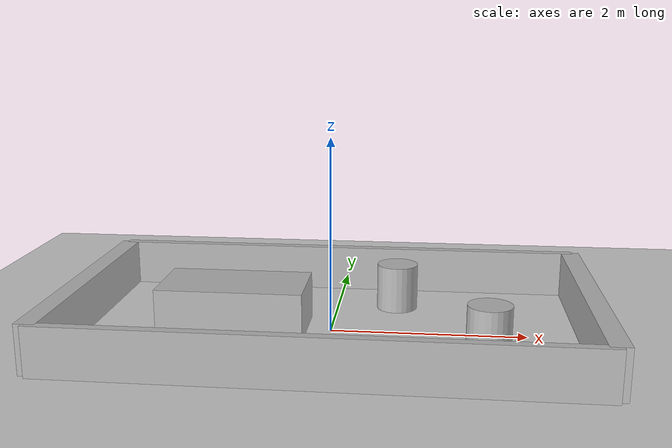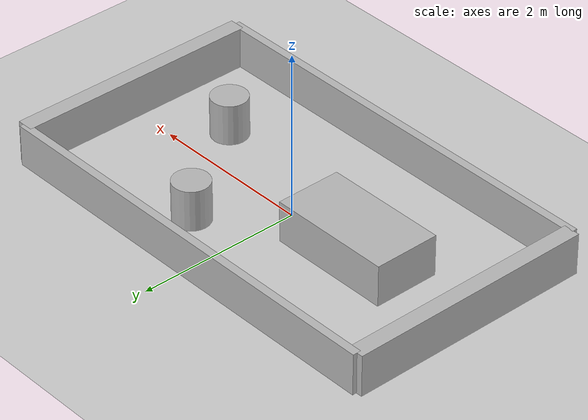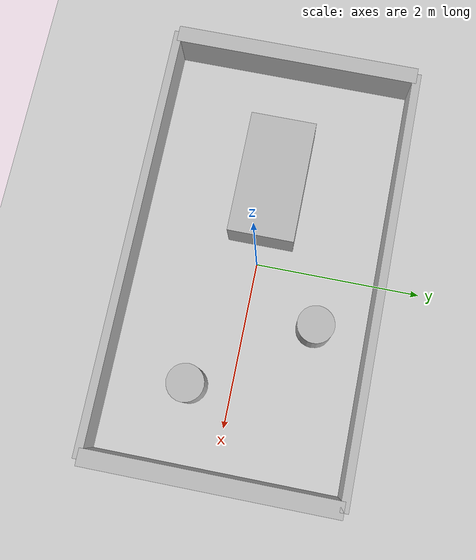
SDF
<?xml version="1.0" ?>
<sdf version="1.4">
  <world name="default">
    <physics type="ode">
      <gravity>0 0 -9.81</gravity>
      <ode>
        <solver>
          <type>quick</type>
          <iters>20</iters>
          <sor>1.0</sor>
        </solver>
        <constraints>
          <cfm>0.0</cfm>
          <erp>0.2</erp>
          <contact_max_correcting_vel>100.0</contact_max_correcting_vel>
          <contact_surface_layer>0.0</contact_surface_layer>
        </constraints>
      </ode>
      <real_time_update_rate>1000</real_time_update_rate>
      <max_step_size>0.001</max_step_size>
    </physics>

    <!-- A global light source -->
    <include>
      <uri>model://sun</uri>
    </include>

    <!-- A ground plane -->
    <include>
      <uri>model://ground_plane</uri>
    </include>

    <model name="wall_1_model">
      <pose>-0 -1.5 0.25 0 0 0</pose>
      <static>true</static>
      <link name="wall_1_body">
        <inertial>
          <mass>1.0</mass>
          <inertia>
            <ixx>1.0</ixx>
            <ixy>0.0</ixy>
            <ixz>0.0</ixz>
            <iyy>1.0</iyy>
            <iyz>0.0</iyz>
            <izz>1.0</izz>
          </inertia>
        </inertial>
        <collision name="collision">
          <geometry>
            <box>
              <size>5.25 0.10 0.5</size>
            </box>
          </geometry>
        </collision>
        <visual name="visual">
          <geometry>
            <box>
              <size>5.25 0.10 0.5</size>
            </box>
          </geometry>
        </visual>
      </link>
    </model>
    <model name="wall_2_model">
      <pose>0 1.5 0.25 0 0 0</pose>
      <static>true</static>
      <link name="wall_2_body">
        <inertial>
          <mass>1.0</mass>
          <inertia>
            <ixx>1.0</ixx>
            <ixy>0.0</ixy>
            <ixz>0.0</ixz>
            <iyy>1.0</iyy>
            <iyz>0.0</iyz>
            <izz>1.0</izz>
          </inertia>
        </inertial>
        <collision name="collision">
          <geometry>
            <box>
              <size>5.25 0.1 0.5</size>
            </box>
          </geometry>
        </collision>
        <visual name="visual">
          <geometry>
            <box>
              <size>5.25 0.1 0.5</size>
            </box>
          </geometry>
        </visual>
      </link>
    </model>
    <model name="wall_3_model">
      <pose> 2.6 0 0.25 0 0 1.57</pose>
      <static>true</static>
      <link name="wall_3_body">
        <inertial>
          <mass>1.0</mass>
          <inertia>
            <ixx>1.0</ixx>
            <ixy>0.0</ixy>
            <ixz>0.0</ixz>
            <iyy>1.0</iyy>
            <iyz>0.0</iyz>
            <izz>1.0</izz>
          </inertia>
        </inertial>
        <collision name="collision">
          <geometry>
            <box>
              <size>3.0 0.2 0.5</size>
            </box>
          </geometry>
        </collision>
        <visual name="visual">
          <geometry>
            <box>
              <size>3.0 0.2 0.5</size>
            </box>
          </geometry>
        </visual>
      </link>
    </model>
    <model name="wall_4_model">
      <pose>-2.6 0 0.25 0 0 1.57</pose>
      <static>true</static>
      <link name="wall_4_body">
        <inertial>
          <mass>1.0</mass>
          <inertia>
            <ixx>1.0</ixx>
            <ixy>0.0</ixy>
            <ixz>0.0</ixz>
            <iyy>1.0</iyy>
            <iyz>0.0</iyz>
            <izz>1.0</izz>
          </inertia>
        </inertial>
        <collision name="collision">
          <geometry>
            <box>
              <size>3.0 0.2 0.5</size>
            </box>
          </geometry>
        </collision>
        <visual name="visual">
          <geometry>
            <box>
              <size>3.0 0.2 0.5</size>
            </box>
          </geometry>
        </visual>
      </link>
    </model>
    <model name="cylinder_1">
      <pose>0.65 0.83 0.25 0 0 0</pose>
        <static>true</static>
        <link name='cylinder_1_body'>
          <collision name="collision">
          <geometry>
            <cylinder>
              <length>0.5</length>
              <radius>0.22</radius>
            </cylinder>
          </geometry>
        </collision>
        <visual name="visual">
          <geometry>
            <cylinder>
              <length>0.5</length>
              <radius>0.22</radius>
            </cylinder>
          </geometry>
        </visual>
      </link>
    </model>
    <model name="cylinder_2">
      <pose>1.580 -0.5 0.25 0 0 0</pose>
        <static>true</static>
        <link name='cylinder_2_body'>
          <collision name="collision">
          <geometry>
            <cylinder>
              <length>0.5</length>
              <radius>0.22</radius>
            </cylinder>
          </geometry>
        </collision>
        <visual name="visual">
          <geometry>
            <cylinder>
              <length>0.5</length>
              <radius>0.22</radius>
            </cylinder>
          </geometry>
        </visual>
      </link>
    </model>
    <model name="stairs_model">
      <pose>-1.0 0 0.25 0 0 0</pose>
      <static>true</static>
      <link name="stairs_body">
        <inertial>
          <mass>1.0</mass>
          <inertia>
            <ixx>1.0</ixx>
            <ixy>0.0</ixy>
            <ixz>0.0</ixz>
            <iyy>1.0</iyy>
            <iyz>0.0</iyz>
            <izz>1.0</izz>
          </inertia>
        </inertial>
        <collision name="collision">
          <geometry>
            <box>
              <size>1.45 0.68 0.5</size>
            </box>
          </geometry>
        </collision>
        <visual name="visual">
          <geometry>
            <box>
              <size>1.5 0.8 0.5</size>
            </box>
          </geometry>
        </visual>
      </link>
    </model>
  </world>
</sdf>
